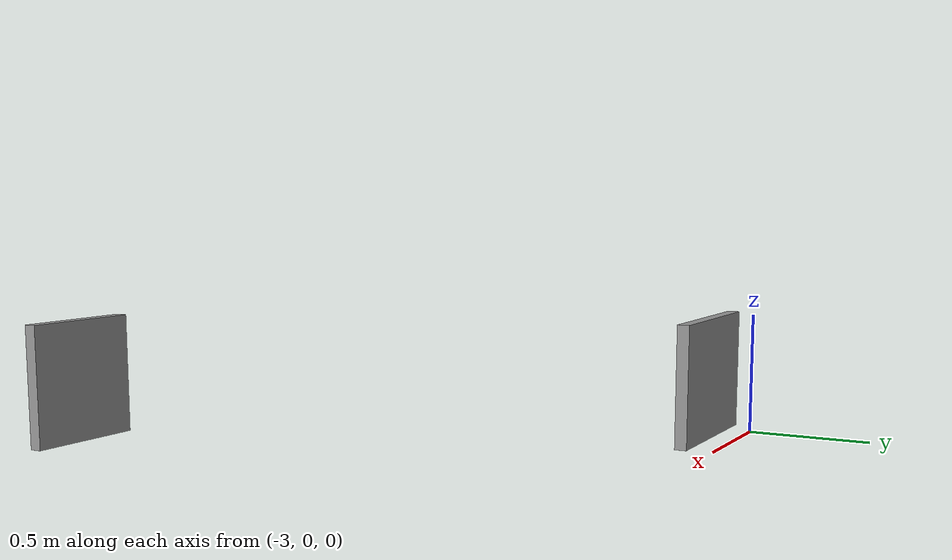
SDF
<?xml version='1.0'?>
<sdf version='1.7'>
  <model name='add_wall7'>
    <pose>-1.56611 -1.1952 0 0 -0 0</pose>
    <link name='Wall_0'>
      <collision name='Wall_0_Collision'>
        <geometry>
          <box>
            <size>0.65 0.05 0.5</size>
          </box>
        </geometry>
        <pose>0 0 0.25 0 -0 0</pose>
      </collision>
      <visual name='Wall_0_Visual'>
        <pose>0 0 0.25 0 -0 0</pose>
        <geometry>
          <box>
            <size>0.65 0.05 0.5</size>
          </box>
        </geometry>
        <material>
          <script>
            <uri>file://media/materials/scripts/gazebo.material</uri>
            <name>Gazebo/Grey</name>
          </script>
          <ambient>1 1 1 1</ambient>
        </material>
        <meta>
          <layer>0</layer>
        </meta>
      </visual>
      <pose>-1.24111 1.06768 0 0 -0 0</pose>
    </link>
    <link name='Wall_2'>
      <collision name='Wall_2_Collision'>
        <geometry>
          <box>
            <size>0.5 0.05 0.5</size>
          </box>
        </geometry>
        <pose>0 0 0.25 0 -0 0</pose>
      </collision>
      <visual name='Wall_2_Visual'>
        <pose>0 0 0.25 0 -0 0</pose>
        <geometry>
          <box>
            <size>0.5 0.05 0.5</size>
          </box>
        </geometry>
        <material>
          <script>
            <uri>file://media/materials/scripts/gazebo.material</uri>
            <name>Gazebo/Grey</name>
          </script>
          <ambient>1 1 1 1</ambient>
        </material>
        <meta>
          <layer>0</layer>
        </meta>
      </visual>
      <pose>0.075984 -1.1702 0 0 -0 0</pose>
    </link>
    <static>1</static>
  </model>
</sdf>
